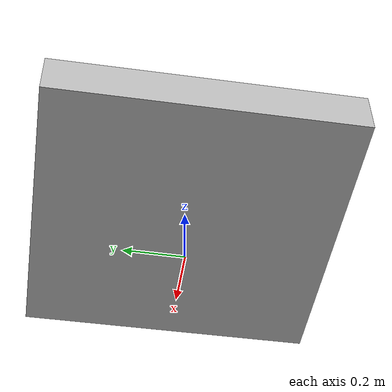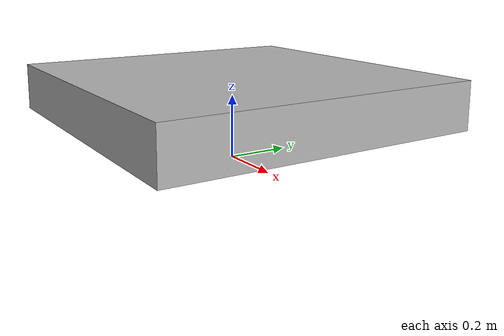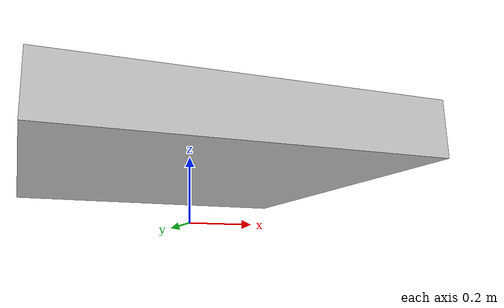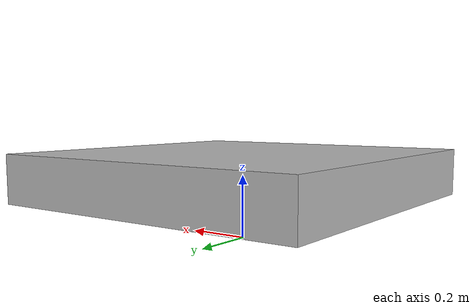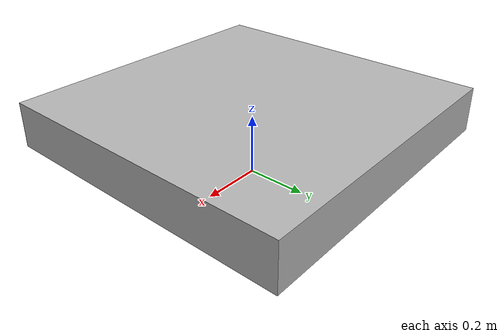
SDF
<?xml version="1.0" ?>
<sdf version="1.6">
    <model name="artifacts">
      <pose>0 0 0.2 0 0 0</pose>
      <static>true</static>
      <link name="box1">
        <inertial>
          <mass>1.0</mass>
          <inertia> <!-- inertias are tricky to compute -->
            <!-- http://gazebosim.org/tutorials?tut=inertia&cat=build_robot -->
            <ixx>0.083</ixx>       <!-- for a box: ixx = 0.083 * mass * (y*y + z*z) -->
            <ixy>0.0</ixy>         <!-- for a box: ixy = 0 -->
            <ixz>0.0</ixz>         <!-- for a box: ixz = 0 -->
            <iyy>0.083</iyy>       <!-- for a box: iyy = 0.083 * mass * (x*x + z*z) -->
            <iyz>0.0</iyz>         <!-- for a box: iyz = 0 -->
            <izz>0.083</izz>       <!-- for a box: izz = 0.083 * mass * (x*x + y*y) -->
          </inertia>
        </inertial>
        <collision name="collision">
          <geometry>
            <box>
              <size>1 1 0.15</size>
            </box>
          </geometry>
        </collision>
        <visual name="visual">
          <geometry>
            <box>
              <size>1 1 0.15</size>
            </box>
          </geometry>
        </visual>
      </link>
    </model>
</sdf>
